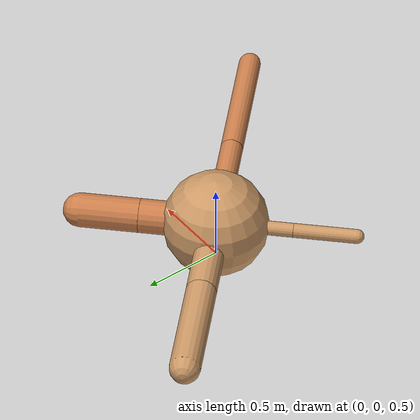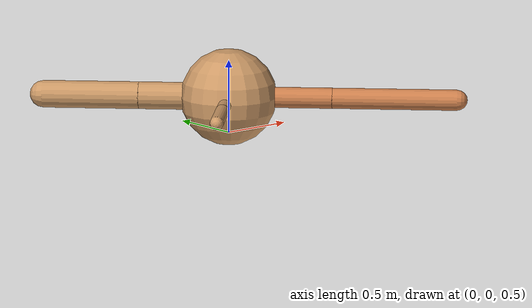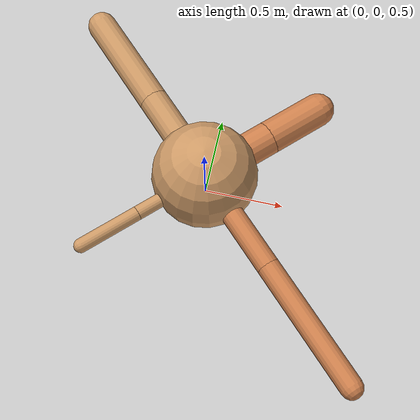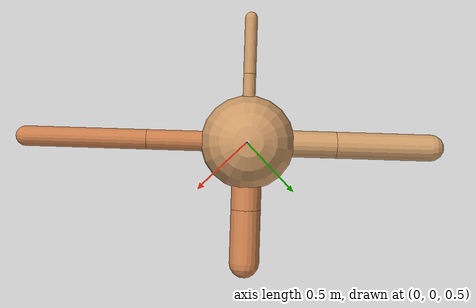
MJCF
<?xml version="1.0" ?>
<mujoco model="ant">

	<compiler angle="degree" coordinate="local" inertiafromgeom="true"/>

	<option integrator="RK4" timestep="0.01"/>

	<custom>

		<numeric data="0.0 0.0 0.55 1.0 0.0 0.0 0.0 0.0 1.0 0.0 -1.0 0.0 -1.0 0.0 1.0" name="init_qpos"/>

	</custom>

	<default>

		<joint armature="1" damping="1" limited="true"/>

		<geom conaffinity="0" condim="3" density="5.0" friction="1.5 0.1 0.1" margin="0.01" rgba="0.8 0.6 0.4 1"/>

	</default>

	<worldbody>

		<body name="torso" pos="0 0 0.75">

			<geom name="torso_geom" pos="0 0 0" size="0.3286186470308585" type="sphere"/>

			<!--joint armature="0" damping="0" limited="false" margin="0.01" name="root" pos="0 0 0" type="free"/-->

			<body name="front_left_leg" pos="0 0 0">

				<geom fromto="0 0 0 0.2 0.2 0" name="aux_1_geom" size="0.10557918341446768" type="capsule" rgba=".8 .5 .3 1"/>

				<body name="aux_1" pos="0.2 0.2 0">

					<joint axis="0 0 1" name="hip_1" pos="0.0 0.0 0.0" range="-40 40" type="hinge"/>

					<geom fromto="0 0 0 0.131488082637161 0.131488082637161 0" name="left_leg_geom" size="0.10557918341446768" type="capsule" rgba=".8 .5 .3 1"/>

					<body pos="0.131488082637161 0.131488082637161 0" name="front_left_foot">

						<joint axis="-1 1 0" name="ankle_1" pos="0.0 0.0 0.0" range="30 100" type="hinge"/>

						<geom fromto="0 0 0 0.262976165274322 0.262976165274322 0" name="left_ankle_geom" size="0.10557918341446768" type="capsule" rgba=".8 .5 .3 1"/>

					</body>

				</body>

			</body>

			<body name="front_right_leg" pos="0 0 0">

				<geom fromto="0 0 0 -0.2 0.2 0" name="aux_2_geom" size="0.09306695101223313" type="capsule"/>

				<body name="aux_2" pos="-0.2 0.2 0">

					<joint axis="0 0 1" name="hip_2" pos="0.0 0.0 0.0" range="-40 40" type="hinge"/>

					<geom fromto="0 0 0 -0.23343726922047692 0.23343726922047692 0" name="right_leg_geom" size="0.09306695101223313" type="capsule"/>

					<body pos="-0.23343726922047692 0.23343726922047692 0" name="front_right_foot">

						<joint axis="1 1 0" name="ankle_2" pos="0.0 0.0 0.0" range="-100 -30" type="hinge"/>

						<geom fromto="0 0 0 -0.46687453844095383 0.46687453844095383 0" name="right_ankle_geom" size="0.09306695101223313" type="capsule"/>

					</body>

				</body>

			</body>

			<body name="left_back_leg" pos="0 0 0">

				<geom fromto="0 0 0 -0.2 -0.2 0" name="aux_3_geom" size="0.04401895812287341" type="capsule"/>

				<body name="aux_3" pos="-0.2 -0.2 0">

					<joint axis="0 0 1" name="hip_3" pos="0.0 0.0 0.0" range="-40 40" type="hinge"/>

					<geom fromto="0 0 0 -0.13784757697981515 -0.13784757697981515 0" name="back_leg_geom" size="0.04401895812287341" type="capsule"/>

					<body pos="-0.13784757697981515 -0.13784757697981515 0" name="left_back_foot">

						<joint axis="-1 1 0" name="ankle_3" pos="0.0 0.0 0.0" range="-100 -30" type="hinge"/>

						<geom fromto="0 0 0 -0.2756951539596303 -0.2756951539596303 0" name="third_ankle_geom" size="0.04401895812287341" type="capsule"/>

					</body>

				</body>

			</body>

			<body name="right_back_leg" pos="0 0 0">

				<geom fromto="0 0 0 0.2 -0.2 0" name="aux_4_geom" size="0.07021300527769225" type="capsule" rgba=".8 .5 .3 1"/>

				<body name="aux_4" pos="0.2 -0.2 0">

					<joint axis="0 0 1" name="hip_4" pos="0.0 0.0 0.0" range="-40 40" type="hinge"/>

					<geom fromto="0 0 0 0.29750250496392266 -0.29750250496392266 0" name="rightback_leg_geom" size="0.07021300527769225" type="capsule" rgba=".8 .5 .3 1"/>

					<body pos="0.29750250496392266 -0.29750250496392266 0" name="right_back_foot">

						<joint axis="1 1 0" name="ankle_4" pos="0.0 0.0 0.0" range="30 100" type="hinge"/>

						<geom fromto="0 0 0 0.5950050099278453 -0.5950050099278453 0" name="fourth_ankle_geom" size="0.07021300527769225" type="capsule" rgba=".8 .5 .3 1"/>

					</body>

				</body>

			</body>

		</body>

	</worldbody>

	<actuator>

		<motor ctrllimited="true" ctrlrange="-1.0 1.0" joint="hip_4" gear="150"/>

		<motor ctrllimited="true" ctrlrange="-1.0 1.0" joint="ankle_4" gear="150"/>

		<motor ctrllimited="true" ctrlrange="-1.0 1.0" joint="hip_1" gear="150"/>

		<motor ctrllimited="true" ctrlrange="-1.0 1.0" joint="ankle_1" gear="150"/>

		<motor ctrllimited="true" ctrlrange="-1.0 1.0" joint="hip_2" gear="150"/>

		<motor ctrllimited="true" ctrlrange="-1.0 1.0" joint="ankle_2" gear="150"/>

		<motor ctrllimited="true" ctrlrange="-1.0 1.0" joint="hip_3" gear="150"/>

		<motor ctrllimited="true" ctrlrange="-1.0 1.0" joint="ankle_3" gear="150"/>

	</actuator>

</mujoco>
